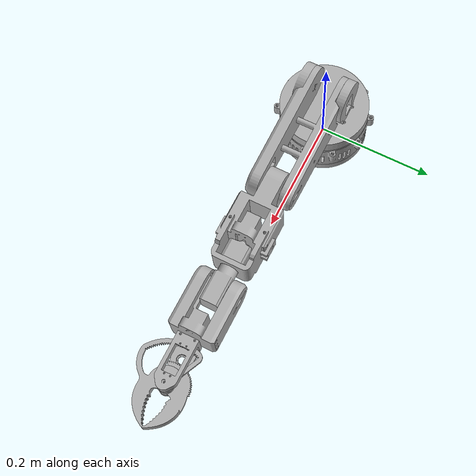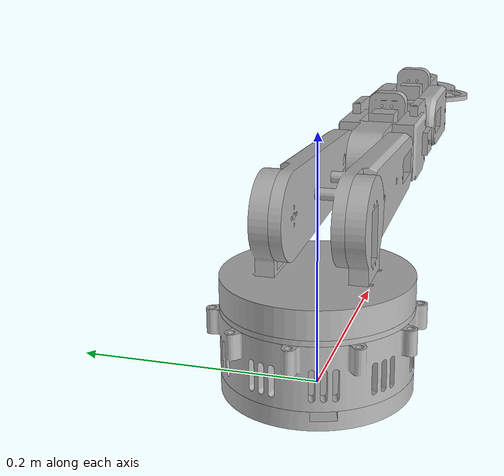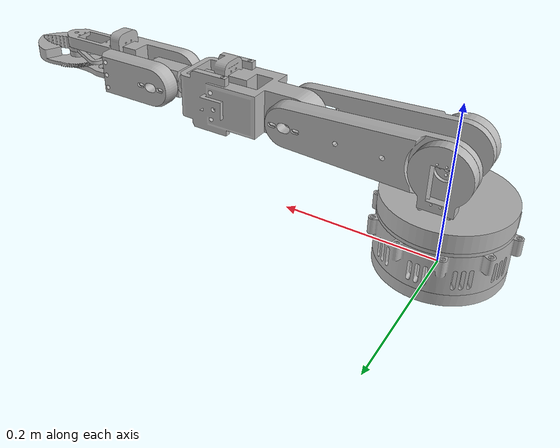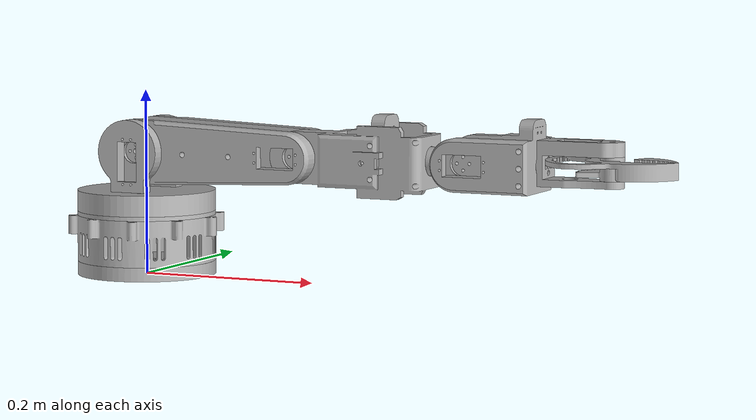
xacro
<?xml version="1.0" ?>
<robot name="mitarm" xmlns:xacro="http://www.ros.org/wiki/xacro">

<xacro:include filename="$(find mitarm_description)/urdf/materials.xacro" />
<xacro:include filename="$(find mitarm_description)/urdf/mitarm.trans" />
<xacro:include filename="$(find mitarm_description)/urdf/mitarm.gazebo" />
<link name="base_link">
  <inertial>
    <origin xyz="0.0007225318145799458 0.0002347648176890952 0.007530286128890356" rpy="0 0 0"/>
    <mass value="0.2613815524136642"/>
    <inertia ixx="0.000388" iyy="0.000377" izz="0.000755" ixy="4e-06" iyz="-0.0" ixz="-1e-06"/>
  </inertial>
  <visual>
    <origin xyz="0 0 0" rpy="0 0 0"/>
    <geometry>
      <mesh filename="package://mitarm_description/meshes/base_link.stl" scale="0.001 0.001 0.001"/>
    </geometry>
    <material name="silver"/>
  </visual>
  <collision>
    <origin xyz="0 0 0" rpy="0 0 0"/>
    <geometry>
      <mesh filename="package://mitarm_description/meshes/base_link.stl" scale="0.001 0.001 0.001"/>
    </geometry>
  </collision>
</link>

<link name="servo_holder_1">
  <inertial>
    <origin xyz="-0.0003870250413150145 3.9263820049963354e-11 0.03337273576954071" rpy="0 0 0"/>
    <mass value="0.32713628516416926"/>
    <inertia ixx="0.000735" iyy="0.000717" izz="0.001307" ixy="0.0" iyz="0.0" ixz="1e-06"/>
  </inertial>
  <visual>
    <origin xyz="-0.0 -0.0 -0.015" rpy="0 0 0"/>
    <geometry>
      <mesh filename="package://mitarm_description/meshes/servo_holder_1.stl" scale="0.001 0.001 0.001"/>
    </geometry>
    <material name="silver"/>
  </visual>
  <collision>
    <origin xyz="-0.0 -0.0 -0.015" rpy="0 0 0"/>
    <geometry>
      <mesh filename="package://mitarm_description/meshes/servo_holder_1.stl" scale="0.001 0.001 0.001"/>
    </geometry>
  </collision>
</link>

<link name="orange_ring_1">
  <inertial>
    <origin xyz="-7.958230150670094e-14 6.100553000211611e-14 0.002250000000000002" rpy="0 0 0"/>
    <mass value="0.022558641945082187"/>
    <inertia ixx="5.3e-05" iyy="5.3e-05" izz="0.000107" ixy="-0.0" iyz="0.0" ixz="0.0"/>
  </inertial>
  <visual>
    <origin xyz="-0.0 -0.0 -0.065" rpy="0 0 0"/>
    <geometry>
      <mesh filename="package://mitarm_description/meshes/orange_ring_1.stl" scale="0.001 0.001 0.001"/>
    </geometry>
    <material name="silver"/>
  </visual>
  <collision>
    <origin xyz="-0.0 -0.0 -0.065" rpy="0 0 0"/>
    <geometry>
      <mesh filename="package://mitarm_description/meshes/orange_ring_1.stl" scale="0.001 0.001 0.001"/>
    </geometry>
  </collision>
</link>

<link name="shoulder_1">
  <inertial>
    <origin xyz="0.0001118512110484805 -7.858949452733166e-17 0.02595950050615324" rpy="0 0 0"/>
    <mass value="0.368012692921962"/>
    <inertia ixx="0.000846" iyy="0.000764" izz="0.001096" ixy="-0.0" iyz="-0.0" ixz="1e-06"/>
  </inertial>
  <visual>
    <origin xyz="-0.0 -0.0 -0.0695" rpy="0 0 0"/>
    <geometry>
      <mesh filename="package://mitarm_description/meshes/shoulder_1.stl" scale="0.001 0.001 0.001"/>
    </geometry>
    <material name="silver"/>
  </visual>
  <collision>
    <origin xyz="-0.0 -0.0 -0.0695" rpy="0 0 0"/>
    <geometry>
      <mesh filename="package://mitarm_description/meshes/shoulder_1.stl" scale="0.001 0.001 0.001"/>
    </geometry>
  </collision>
</link>

<link name="bicep_1">
  <inertial>
    <origin xyz="0.09323815503254468 0.02940616409136899 1.820799583329702e-08" rpy="0 0 0"/>
    <mass value="0.488316018042516"/>
    <inertia ixx="0.00054" iyy="0.001965" izz="0.002185" ixy="-3.8e-05" iyz="0.0" ixz="0.0"/>
  </inertial>
  <visual>
    <origin xyz="-0.0 0.0284 -0.135" rpy="0 0 0"/>
    <geometry>
      <mesh filename="package://mitarm_description/meshes/bicep_1.stl" scale="0.001 0.001 0.001"/>
    </geometry>
    <material name="silver"/>
  </visual>
  <collision>
    <origin xyz="-0.0 0.0284 -0.135" rpy="0 0 0"/>
    <geometry>
      <mesh filename="package://mitarm_description/meshes/bicep_1.stl" scale="0.001 0.001 0.001"/>
    </geometry>
  </collision>
</link>

<link name="elbow_1">
  <inertial>
    <origin xyz="0.06935481660081327 0.01843471639721764 0.001557576303791386" rpy="0 0 0"/>
    <mass value="0.41095625041627304"/>
    <inertia ixx="0.000331" iyy="0.000896" izz="0.000973" ixy="-3e-06" iyz="0.0" ixz="-1.3e-05"/>
  </inertial>
  <visual>
    <origin xyz="-0.185 0.0184 -0.135" rpy="0 0 0"/>
    <geometry>
      <mesh filename="package://mitarm_description/meshes/elbow_1.stl" scale="0.001 0.001 0.001"/>
    </geometry>
    <material name="silver"/>
  </visual>
  <collision>
    <origin xyz="-0.185 0.0184 -0.135" rpy="0 0 0"/>
    <geometry>
      <mesh filename="package://mitarm_description/meshes/elbow_1.stl" scale="0.001 0.001 0.001"/>
    </geometry>
  </collision>
</link>

<link name="forearm_1">
  <inertial>
    <origin xyz="0.04843860215732515 -0.0001360148751786914 7.370396379019484e-05" rpy="0 0 0"/>
    <mass value="0.11130884365182603"/>
    <inertia ixx="2e-05" iyy="0.000127" izz="0.000125" ixy="0.0" iyz="-0.0" ixz="0.0"/>
  </inertial>
  <visual>
    <origin xyz="-0.2975 0.0 -0.135956" rpy="0 0 0"/>
    <geometry>
      <mesh filename="package://mitarm_description/meshes/forearm_1.stl" scale="0.001 0.001 0.001"/>
    </geometry>
    <material name="silver"/>
  </visual>
  <collision>
    <origin xyz="-0.2975 0.0 -0.135956" rpy="0 0 0"/>
    <geometry>
      <mesh filename="package://mitarm_description/meshes/forearm_1.stl" scale="0.001 0.001 0.001"/>
    </geometry>
  </collision>
</link>

<link name="wrist_1">
  <inertial>
    <origin xyz="0.040568256623747245 0.016625106888881306 0.0023665708399699947" rpy="0 0 0"/>
    <mass value="0.2607706314227234"/>
    <inertia ixx="0.000249" iyy="0.000315" izz="0.000404" ixy="1.3e-05" iyz="1e-06" ixz="-1.6e-05"/>
  </inertial>
  <visual>
    <origin xyz="-0.3775 0.01474 -0.135956" rpy="0 0 0"/>
    <geometry>
      <mesh filename="package://mitarm_description/meshes/wrist_1.stl" scale="0.001 0.001 0.001"/>
    </geometry>
    <material name="silver"/>
  </visual>
  <collision>
    <origin xyz="-0.3775 0.01474 -0.135956" rpy="0 0 0"/>
    <geometry>
      <mesh filename="package://mitarm_description/meshes/wrist_1.stl" scale="0.001 0.001 0.001"/>
    </geometry>
  </collision>
</link>

<link name="palm_1">
  <inertial>
    <origin xyz="0.029689630044196946 -8.294476216974544e-15 0.004234416458535867" rpy="0 0 0"/>
    <mass value="0.04910424116673452"/>
    <inertia ixx="2e-05" iyy="5.4e-05" izz="4.5e-05" ixy="-0.0" iyz="0.0" ixz="-2e-06"/>
  </inertial>
  <visual>
    <origin xyz="-0.4675 0.0 -0.136441" rpy="0 0 0"/>
    <geometry>
      <mesh filename="package://mitarm_description/meshes/palm_1.stl" scale="0.001 0.001 0.001"/>
    </geometry>
    <material name="silver"/>
  </visual>
  <collision>
    <origin xyz="-0.4675 0.0 -0.136441" rpy="0 0 0"/>
    <geometry>
      <mesh filename="package://mitarm_description/meshes/palm_1.stl" scale="0.001 0.001 0.001"/>
    </geometry>
  </collision>
</link>

<link name="finger_left_1">
  <inertial>
    <origin xyz="0.016013217466136598 0.013826604272114636 0.009745141385066741" rpy="0 0 0"/>
    <mass value="0.03198293553605045"/>
    <inertia ixx="6e-06" iyy="2.2e-05" izz="2.6e-05" ixy="-4e-06" iyz="-0.0" ixz="-2e-06"/>
  </inertial>
  <visual>
    <origin xyz="-0.53625 0.0 -0.124191" rpy="0 0 0"/>
    <geometry>
      <mesh filename="package://mitarm_description/meshes/finger_left_1.stl" scale="0.001 0.001 0.001"/>
    </geometry>
    <material name="silver"/>
  </visual>
  <collision>
    <origin xyz="-0.53625 0.0 -0.124191" rpy="0 0 0"/>
    <geometry>
      <mesh filename="package://mitarm_description/meshes/finger_left_1.stl" scale="0.001 0.001 0.001"/>
    </geometry>
  </collision>
</link>

<link name="finger_right_1">
  <inertial>
    <origin xyz="0.009988641771545681 -0.017284532680518373 -0.009147534981625433" rpy="0 0 0"/>
    <mass value="0.03292577094713501"/>
    <inertia ixx="1e-05" iyy="4e-05" izz="4.9e-05" ixy="4e-06" iyz="-1e-06" ixz="3e-06"/>
  </inertial>
  <visual>
    <origin xyz="-0.53625 0.0 -0.148691" rpy="0 0 0"/>
    <geometry>
      <mesh filename="package://mitarm_description/meshes/finger_right_1.stl" scale="0.001 0.001 0.001"/>
    </geometry>
    <material name="silver"/>
  </visual>
  <collision>
    <origin xyz="-0.53625 0.0 -0.148691" rpy="0 0 0"/>
    <geometry>
      <mesh filename="package://mitarm_description/meshes/finger_right_1.stl" scale="0.001 0.001 0.001"/>
    </geometry>
  </collision>
</link>

<joint name="servo_holder_joint" type="fixed">
  <origin xyz="0.0 0.0 0.015" rpy="0 0 0"/>
  <parent link="base_link"/>
  <child link="servo_holder_1"/>
</joint>

<joint name="bearing_joint" type="fixed">
  <origin xyz="0.0 0.0 0.05" rpy="0 0 0"/>
  <parent link="servo_holder_1"/>
  <child link="orange_ring_1"/>
</joint>

<joint name="base_revolute" type="revolute">
  <origin xyz="0.0 0.0 0.0045" rpy="0 0 0"/>
  <parent link="orange_ring_1"/>
  <child link="shoulder_1"/>
  <axis xyz="0.0 -0.0 1.0"/>
  <limit upper="1.570796" lower="-1.570796" effort="100" velocity="100"/>
</joint>

<joint name="shoulder_joint" type="revolute">
  <origin xyz="0.0 -0.0284 0.0655" rpy="0 0 0"/>
  <parent link="shoulder_1"/>
  <child link="bicep_1"/>
  <axis xyz="-0.0 1.0 -0.0"/>
  <limit upper="0.0" lower="-3.141593" effort="100" velocity="100"/>
</joint>

<joint name="elbow_joint" type="revolute">
  <origin xyz="0.185 0.01 0.0" rpy="0 0 0"/>
  <parent link="bicep_1"/>
  <child link="elbow_1"/>
  <axis xyz="-0.0 1.0 -0.0"/>
  <limit upper="1.832596" lower="0.0" effort="100" velocity="100"/>
</joint>

<joint name="elbow_twist" type="revolute">
  <origin xyz="0.1125 0.0184 0.000956" rpy="0 0 0"/>
  <parent link="elbow_1"/>
  <child link="forearm_1"/>
  <axis xyz="1.0 0.0 -0.0"/>
  <limit upper="1.570796" lower="-1.570796" effort="100" velocity="100"/>
</joint>

<joint name="wrist_joint" type="revolute">
  <origin xyz="0.08 -0.01474 0.0" rpy="0 0 0"/>
  <parent link="forearm_1"/>
  <child link="wrist_1"/>
  <axis xyz="0.0 -1.0 0.0"/>
  <limit upper="1.570796" lower="-1.570796" effort="100" velocity="100"/>
</joint>

<joint name="wrist_twist" type="revolute">
  <origin xyz="0.09 0.01474 0.000485" rpy="0 0 0"/>
  <parent link="wrist_1"/>
  <child link="palm_1"/>
  <axis xyz="1.0 0.0 -0.0"/>
  <limit upper="1.570796" lower="-1.570796" effort="100" velocity="100"/>
</joint>

<joint name="finger_left_joint" type="revolute">
  <origin xyz="0.06875 0.0 -0.01225" rpy="0 0 0"/>
  <parent link="palm_1"/>
  <child link="finger_left_1"/>
  <axis xyz="-0.0 0.0 -1.0"/>
  <limit upper="0.0" lower="-1.308997" effort="100" velocity="100"/>
</joint>

<joint name="finger_right_joint" type="revolute">
  <origin xyz="0.06875 0.0 0.01225" rpy="0 0 0"/>
  <parent link="palm_1"/>
  <child link="finger_right_1"/>
  <axis xyz="-0.0 0.0 -1.0"/>
  <limit upper="1.308997" lower="0.0" effort="100" velocity="100"/>
</joint>

</robot>

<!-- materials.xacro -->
<robot name="mitarm" xmlns:xacro="http://www.ros.org/wiki/xacro" >

<material name="silver">
  <color rgba="0.700 0.700 0.700 1.000"/>
</material>

</robot>

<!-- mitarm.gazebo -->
<robot name="mitarm" xmlns:xacro="http://www.ros.org/wiki/xacro" >

<xacro:property name="body_color" value="Gazebo/Silver" />

<gazebo>
  <plugin name="control" filename="libgazebo_ros_control.so"/>
</gazebo>
<gazebo reference="base_link">
  <material>${body_color}</material>
  <mu1>0.2</mu1>
  <mu2>0.2</mu2>
  <selfCollide>true</selfCollide>
  <gravity>true</gravity>
</gazebo>

<gazebo reference="servo_holder_1">
  <material>${body_color}</material>
  <mu1>0.2</mu1>
  <mu2>0.2</mu2>
  <selfCollide>true</selfCollide>
</gazebo>

<gazebo reference="orange_ring_1">
  <material>${body_color}</material>
  <mu1>0.2</mu1>
  <mu2>0.2</mu2>
  <selfCollide>true</selfCollide>
</gazebo>

<gazebo reference="shoulder_1">
  <material>${body_color}</material>
  <mu1>0.2</mu1>
  <mu2>0.2</mu2>
  <selfCollide>true</selfCollide>
</gazebo>

<gazebo reference="bicep_1">
  <material>${body_color}</material>
  <mu1>0.2</mu1>
  <mu2>0.2</mu2>
  <selfCollide>true</selfCollide>
</gazebo>

<gazebo reference="elbow_1">
  <material>${body_color}</material>
  <mu1>0.2</mu1>
  <mu2>0.2</mu2>
  <selfCollide>true</selfCollide>
</gazebo>

<gazebo reference="forearm_1">
  <material>${body_color}</material>
  <mu1>0.2</mu1>
  <mu2>0.2</mu2>
  <selfCollide>true</selfCollide>
</gazebo>

<gazebo reference="wrist_1">
  <material>${body_color}</material>
  <mu1>0.2</mu1>
  <mu2>0.2</mu2>
  <selfCollide>true</selfCollide>
</gazebo>

<gazebo reference="palm_1">
  <material>${body_color}</material>
  <mu1>0.2</mu1>
  <mu2>0.2</mu2>
  <selfCollide>true</selfCollide>
</gazebo>

<gazebo reference="finger_left_1">
  <material>${body_color}</material>
  <mu1>0.2</mu1>
  <mu2>0.2</mu2>
  <selfCollide>true</selfCollide>
</gazebo>

<gazebo reference="finger_right_1">
  <material>${body_color}</material>
  <mu1>0.2</mu1>
  <mu2>0.2</mu2>
  <selfCollide>true</selfCollide>
</gazebo>

</robot>
